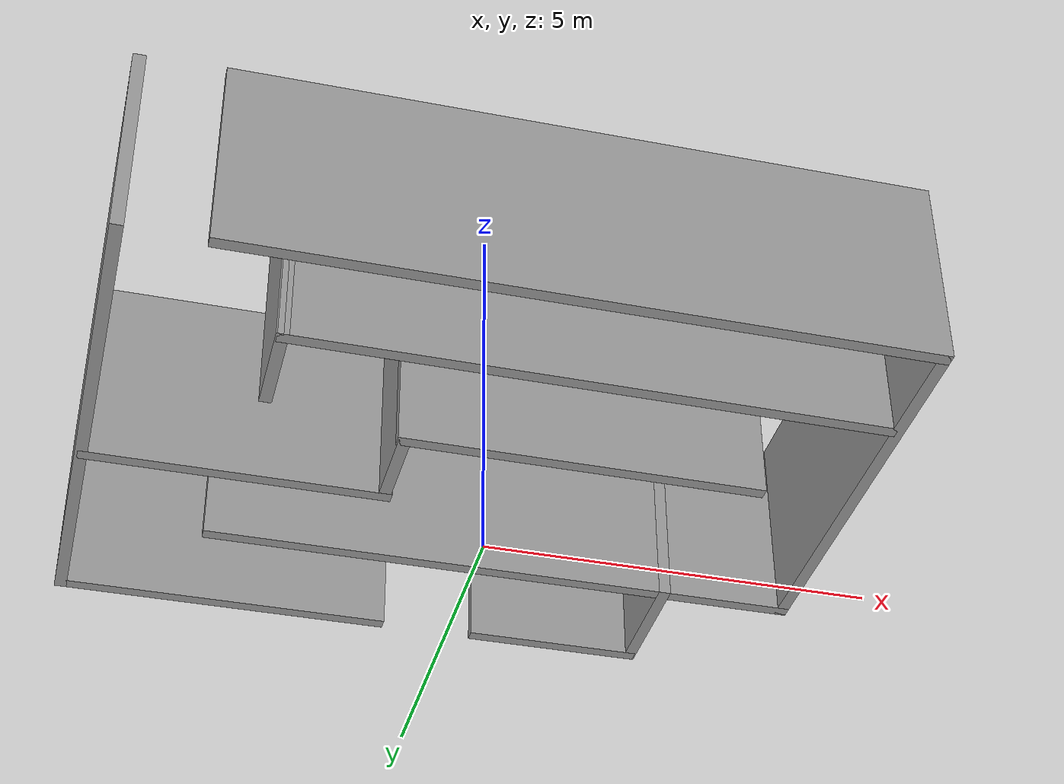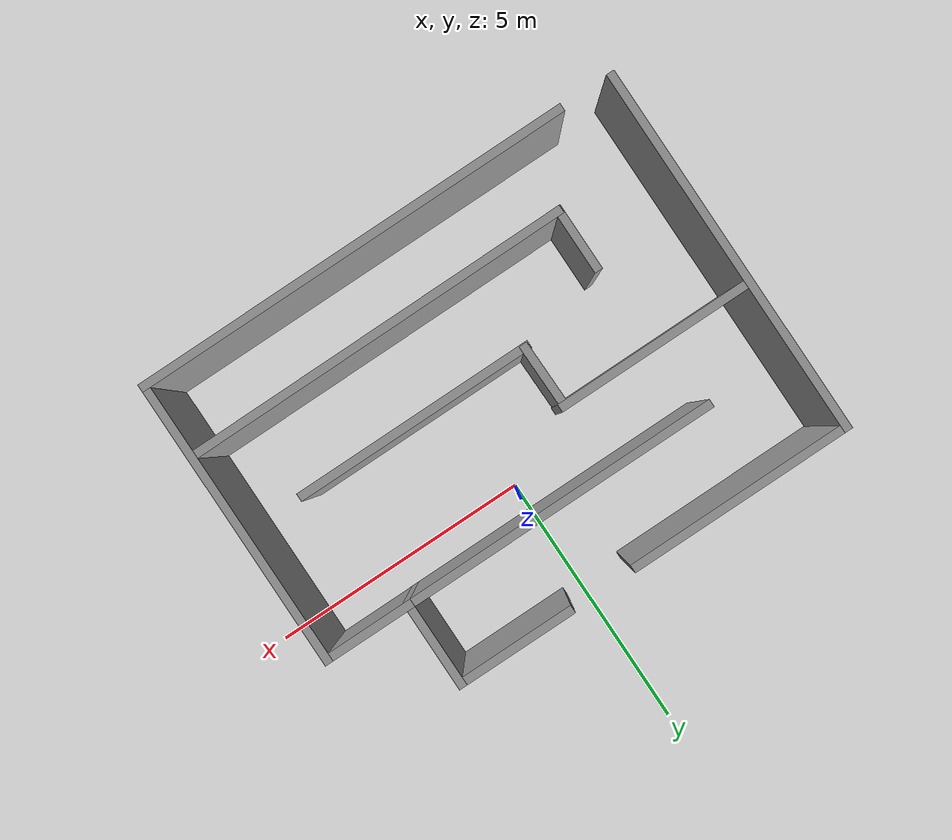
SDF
<?xml version='1.0'?>
<sdf version='1.7'>
  <model name='maze'>
    <pose>-0.464955 -1.3525 0 0 -0 0</pose>
    <link name='Wall_1'>
      <collision name='Wall_1_Collision'>
        <geometry>
          <box>
            <size>8.25 0.15 2.5</size>
          </box>
        </geometry>
        <pose>0 0 1.25 0 -0 0</pose>
      </collision>
      <visual name='Wall_1_Visual'>
        <pose>0 0 1.25 0 -0 0</pose>
        <geometry>
          <box>
            <size>8.25 0.15 2.5</size>
          </box>
        </geometry>
        <material>
          <script>
            <uri>file://media/materials/scripts/gazebo.material</uri>
            <name>Gazebo/Grey</name>
          </script>
          <ambient>1 1 1 1</ambient>
        </material>
        <meta>
          <layer>0</layer>
        </meta>
      </visual>
      <pose>0.515408 -3.4419 0 0 -0 0</pose>
    </link>
    <link name='Wall_2'>
      <collision name='Wall_2_Collision'>
        <geometry>
          <box>
            <size>5.5 0.15 2.5</size>
          </box>
        </geometry>
        <pose>0 0 1.25 0 -0 0</pose>
      </collision>
      <visual name='Wall_2_Visual'>
        <pose>0 0 1.25 0 -0 0</pose>
        <geometry>
          <box>
            <size>5.5 0.15 2.5</size>
          </box>
        </geometry>
        <material>
          <script>
            <uri>file://media/materials/scripts/gazebo.material</uri>
            <name>Gazebo/Grey</name>
          </script>
          <ambient>1 1 1 1</ambient>
        </material>
        <meta>
          <layer>0</layer>
        </meta>
      </visual>
      <pose>4.56541 -0.766899 0 0 -0 1.5708</pose>
    </link>
    <link name='Wall_3'>
      <collision name='Wall_3_Collision'>
        <geometry>
          <box>
            <size>1.75 0.15 2.5</size>
          </box>
        </geometry>
        <pose>0 0 1.25 0 -0 0</pose>
      </collision>
      <visual name='Wall_3_Visual'>
        <pose>0 0 1.25 0 -0 0</pose>
        <geometry>
          <box>
            <size>1.75 0.15 2.5</size>
          </box>
        </geometry>
        <material>
          <script>
            <uri>file://media/materials/scripts/gazebo.material</uri>
            <name>Gazebo/Grey</name>
          </script>
          <ambient>1 1 1 1</ambient>
        </material>
        <meta>
          <layer>0</layer>
        </meta>
      </visual>
      <pose>3.76541 1.9081 0 0 -0 3.14159</pose>
    </link>
    <link name='Wall_4'>
      <collision name='Wall_4_Collision'>
        <geometry>
          <box>
            <size>1.6825 0.15 2.5</size>
          </box>
        </geometry>
        <pose>0 0 1.25 0 -0 0</pose>
      </collision>
      <visual name='Wall_4_Visual'>
        <pose>0 0 1.25 0 -0 0</pose>
        <geometry>
          <box>
            <size>1.6825 0.15 2.5</size>
          </box>
        </geometry>
        <material>
          <script>
            <uri>file://media/materials/scripts/gazebo.material</uri>
            <name>Gazebo/Grey</name>
          </script>
          <ambient>1 1 1 1</ambient>
        </material>
        <meta>
          <layer>0</layer>
        </meta>
      </visual>
      <pose>2.96541 2.6743 0 0 -0 1.5708</pose>
    </link>
    <link name='Wall_5'>
      <collision name='Wall_5_Collision'>
        <geometry>
          <box>
            <size>2.25 0.15 2.5</size>
          </box>
        </geometry>
        <pose>0 0 1.25 0 -0 0</pose>
      </collision>
      <visual name='Wall_5_Visual'>
        <pose>0 0 1.25 0 -0 0</pose>
        <geometry>
          <box>
            <size>2.25 0.15 2.5</size>
          </box>
        </geometry>
        <material>
          <script>
            <uri>file://media/materials/scripts/gazebo.material</uri>
            <name>Gazebo/Grey</name>
          </script>
          <ambient>1 1 1 1</ambient>
        </material>
        <meta>
          <layer>0</layer>
        </meta>
      </visual>
      <pose>1.89851 3.44051 0 0 -0 3.14159</pose>
    </link>
    <link name='Wall_6'>
      <collision name='Wall_6_Collision'>
        <geometry>
          <box>
            <size>7 0.15 2.5</size>
          </box>
        </geometry>
        <pose>0 0 1.25 0 -0 0</pose>
      </collision>
      <visual name='Wall_6_Visual'>
        <pose>0 0 1.25 0 -0 0</pose>
        <geometry>
          <box>
            <size>7 0.15 2.5</size>
          </box>
        </geometry>
        <material>
          <script>
            <uri>file://media/materials/scripts/gazebo.material</uri>
            <name>Gazebo/Grey</name>
          </script>
          <ambient>1 1 1 1</ambient>
        </material>
        <meta>
          <layer>0</layer>
        </meta>
      </visual>
      <pose>-4.56541 0.016899 0 0 -0 1.5708</pose>
    </link>
    <link name='Wall_7'>
      <collision name='Wall_7_Collision'>
        <geometry>
          <box>
            <size>4.25 0.15 2.5</size>
          </box>
        </geometry>
        <pose>0 0 1.25 0 -0 0</pose>
      </collision>
      <visual name='Wall_7_Visual'>
        <pose>0 0 1.25 0 -0 0</pose>
        <geometry>
          <box>
            <size>4.25 0.15 2.5</size>
          </box>
        </geometry>
        <material>
          <script>
            <uri>file://media/materials/scripts/gazebo.material</uri>
            <name>Gazebo/Grey</name>
          </script>
          <ambient>1 1 1 1</ambient>
        </material>
        <meta>
          <layer>0</layer>
        </meta>
      </visual>
      <pose>-2.51541 3.4419 0 0 -0 0</pose>
    </link>
    <link name='Wall_8'>
      <collision name='Wall_8_Collision'>
        <geometry>
          <box>
            <size>6 0.15 2.5</size>
          </box>
        </geometry>
        <pose>0 0 1.25 0 -0 0</pose>
      </collision>
      <visual name='Wall_8_Visual'>
        <pose>0 0 1.25 0 -0 0</pose>
        <geometry>
          <box>
            <size>6 0.15 2.5</size>
          </box>
        </geometry>
        <material>
          <script>
            <uri>file://media/materials/scripts/gazebo.material</uri>
            <name>Gazebo/Grey</name>
          </script>
          <ambient>1 1 1 1</ambient>
        </material>
        <meta>
          <layer>0</layer>
        </meta>
      </visual>
      <pose>0.040408 1.9081 0 0 -0 3.14159</pose>
    </link>
    <link name='Wall_9'>
      <collision name='Wall_9_Collision'>
        <geometry>
          <box>
            <size>3.75 0.15 2.5</size>
          </box>
        </geometry>
        <pose>0 0 1.25 0 -0 0</pose>
      </collision>
      <visual name='Wall_9_Visual'>
        <pose>0 0 1.25 0 -0 0</pose>
        <geometry>
          <box>
            <size>3.75 0.15 2.5</size>
          </box>
        </geometry>
        <material>
          <script>
            <uri>file://media/materials/scripts/gazebo.material</uri>
            <name>Gazebo/Grey</name>
          </script>
          <ambient>1 1 1 1</ambient>
        </material>
        <meta>
          <layer>0</layer>
        </meta>
      </visual>
      <pose>-2.73161 0.613768 0 0 -0 0</pose>
    </link>
    <link name='Wall_10'>
      <collision name='Wall_10_Collision'>
        <geometry>
          <box>
            <size>1.28044 0.15 2.5</size>
          </box>
        </geometry>
        <pose>0 0 1.25 0 -0 0</pose>
      </collision>
      <visual name='Wall_10_Visual'>
        <pose>0 0 1.25 0 -0 0</pose>
        <geometry>
          <box>
            <size>1.28044 0.15 2.5</size>
          </box>
        </geometry>
        <material>
          <script>
            <uri>file://media/materials/scripts/gazebo.material</uri>
            <name>Gazebo/Grey</name>
          </script>
          <ambient>1 1 1 1</ambient>
        </material>
        <meta>
          <layer>0</layer>
        </meta>
      </visual>
      <pose>-0.94006 0.048609 0 0 -0 -1.55585</pose>
    </link>
    <link name='Wall_11'>
      <collision name='Wall_11_Collision'>
        <geometry>
          <box>
            <size>4.5 0.15 2.5</size>
          </box>
        </geometry>
        <pose>0 0 1.25 0 -0 0</pose>
      </collision>
      <visual name='Wall_11_Visual'>
        <pose>0 0 1.25 0 -0 0</pose>
        <geometry>
          <box>
            <size>4.5 0.15 2.5</size>
          </box>
        </geometry>
        <material>
          <script>
            <uri>file://media/materials/scripts/gazebo.material</uri>
            <name>Gazebo/Grey</name>
          </script>
          <ambient>1 1 1 1</ambient>
        </material>
        <meta>
          <layer>0</layer>
        </meta>
      </visual>
      <pose>1.22649 -0.533449 0 0 -0 0</pose>
    </link>
    <link name='Wall_12'>
      <collision name='Wall_12_Collision'>
        <geometry>
          <box>
            <size>7.23312 0.15 2.5</size>
          </box>
        </geometry>
        <pose>0 0 1.25 0 -0 0</pose>
      </collision>
      <visual name='Wall_12_Visual'>
        <pose>0 0 1.25 0 -0 0</pose>
        <geometry>
          <box>
            <size>7.23312 0.15 2.5</size>
          </box>
        </geometry>
        <material>
          <script>
            <uri>file://media/materials/scripts/gazebo.material</uri>
            <name>Gazebo/Grey</name>
          </script>
          <ambient>1 1 1 1</ambient>
        </material>
        <meta>
          <layer>0</layer>
        </meta>
      </visual>
      <pose>0.933799 -2.06466 0 0 -0 -3.13921</pose>
    </link>
    <link name='Wall_13'>
      <collision name='Wall_13_Collision'>
        <geometry>
          <box>
            <size>1.25 0.15 2.5</size>
          </box>
        </geometry>
        <pose>0 0 1.25 0 -0 0</pose>
      </collision>
      <visual name='Wall_13_Visual'>
        <pose>0 0 1.25 0 -0 0</pose>
        <geometry>
          <box>
            <size>1.25 0.15 2.5</size>
          </box>
        </geometry>
        <material>
          <script>
            <uri>file://media/materials/scripts/gazebo.material</uri>
            <name>Gazebo/Grey</name>
          </script>
          <ambient>1 1 1 1</ambient>
        </material>
        <meta>
          <layer>0</layer>
        </meta>
      </visual>
      <pose>-2.62465 -1.52311 0 0 -0 1.5708</pose>
    </link>
    <static>1</static>
  </model>
</sdf>
